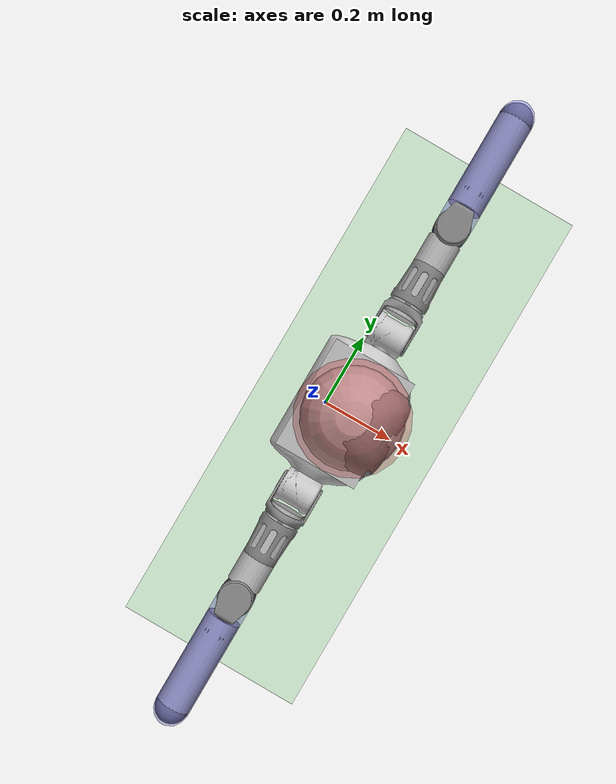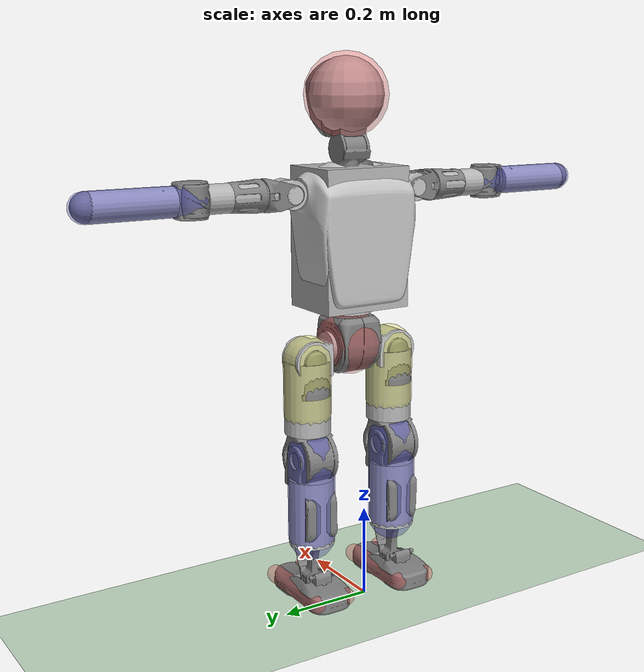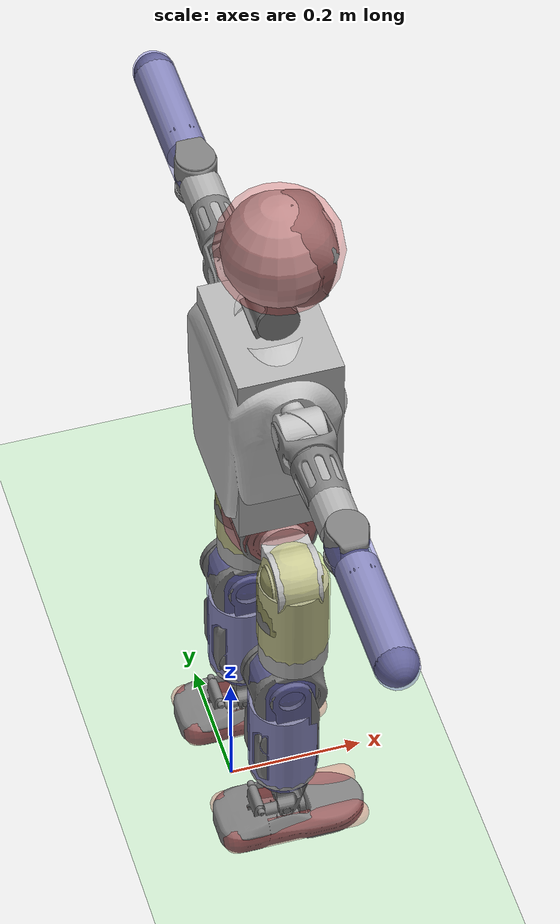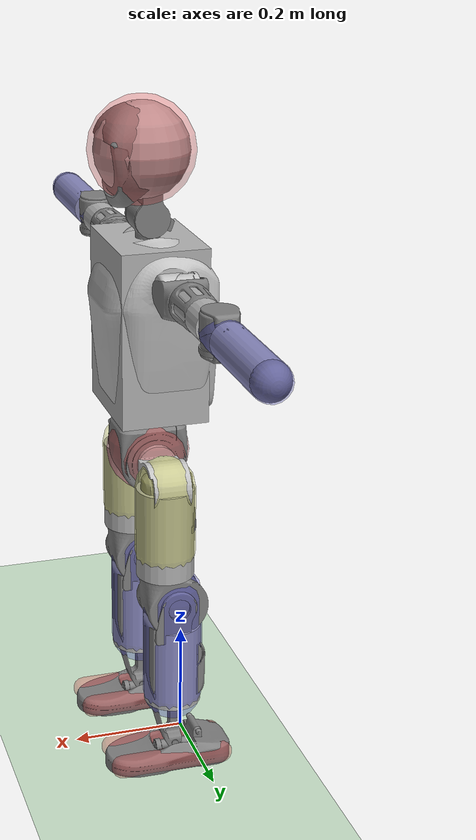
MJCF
<mujoco model="T1">

  <compiler angle="radian" meshdir="assets" autolimits="true"/>

  <option cone="pyramidal" impratio="1" solver="Newton" iterations="2" ls_iterations="4" density="1.2" viscosity="0.00002">
    <flag eulerdamp="disable"/>
  </option>

  <visual>
    <headlight diffuse="0.6 0.6 0.6" ambient="0.3 0.3 0.3" specular="0 0 0"/>
    <rgba haze="0.871 0.616 0.4 0.5"/>
    <global azimuth="-130" elevation="-20"/>
  </visual>

  <asset>
    <material name="light_gray" rgba="0.76 0.76 0.76 1"/>
    <material name="medium_gray" rgba="0.4 0.4 0.4 1"/>
    <texture builtin="gradient" height="100" rgb1="0.9 0.9 0.9" rgb2="0.549 0.251 0.0" type="skybox" width="100"/>
    <texture name="texplane" type="2d" builtin="checker" rgb1="0.5 0.5 0.5" rgb2="0.55 0.55 0.55" width="100" height="100"/>
    <material name="MatPlane" reflectance="0.0" texture="texplane" texrepeat="1 1" texuniform="true"/>

    <mesh file="Trunk.stl"/>
    <mesh file="H1.stl"/>
    <mesh file="H2.stl"/>
    <mesh file="AL1.stl"/>
    <mesh file="AL2.stl"/>
    <mesh file="AL3.stl"/>
    <mesh file="left_hand_link.stl"/>
    <mesh file="AR1.stl"/>
    <mesh file="AR2.stl"/>
    <mesh file="AR3.stl"/>
    <mesh file="right_hand_link.stl"/>
    <mesh file="Waist.stl"/>
    <mesh file="Hip_Pitch_Left.stl"/>
    <mesh file="Hip_Roll_Left.stl"/>
    <mesh file="Hip_Yaw_Left.stl"/>
    <mesh file="Shank_Left.stl"/>
    <mesh file="Ankle_Cross_Left.stl"/>
    <mesh file="left_foot_link.stl"/>
    <mesh file="Hip_Pitch_Right.stl"/>
    <mesh file="Hip_Roll_Right.stl"/>
    <mesh file="Hip_Yaw_Right.stl"/>
    <mesh file="Shank_Right.stl"/>
    <mesh file="Ankle_Cross_Right.stl"/>
    <mesh file="right_foot_link.stl"/>
  </asset>

  <default>
    <default class="mimic">
      <site group="4" type="box" size="0.075 0.05 0.025" rgba="1.0 0.0 0.0 0.5"/>
    </default>
    <default class="t1">
      <site rgba="1 0 0 1" size="0.01" group="5"/>
      <!-- borrowed from https://github.com/BoosterRobotics/booster_gym/blob/687a33d08b08875fe45dc8d91b54db83766df8b9/resources/T1/T1_serial.xml#L6 -->
      <joint limited="true" damping="0.01" frictionloss="0.0" armature="0.01"/>
      <default class="visual">
        <geom type="mesh" contype="0" conaffinity="0" group="0"/>
      </default>
      <default class="collision">
        <geom group="0" rgba="0.7 0.7 0.7 1" contype="0" conaffinity="0"/>

      </default>
    </default>
  </default>

  <worldbody>
    <geom name="floor" friction="1 .1 .1" pos="0 0 0" size="0 0 0.125" type="plane" material="MatPlane" condim="3" conaffinity="1" contype="1" group="2" rgba="0.8 0.9 0.8 1"/>
    <body name="Trunk" pos="0 0 .675" childclass="t1">
      <light name="spotlight" mode="trackcom" pos="0 -2 50" dir="0 0 -1"/>
      <site name="upper_body_mimic" class="mimic" pos="0.075 0.0 0.2"/>
      <freejoint name="root"/>
      <inertial pos="0.0551365 -1.42058e-06 0.105062" quat="0.99996 1.40561e-05 -0.00899532 -1.39249e-05" mass="11.7"
        diaginertia="0.0915404 0.0767787 0.0556055"/>
      <site name="imu"/>
      <geom class="visual" material="light_gray" mesh="Trunk"/>
      <geom class="collision" size="0.075 0.1 0.15" pos="0.06 0 0.12" type="box"/>

      <geom name="torso_col" type="box" pos="0.06 0 0.12" size="0.075 0.1 0.15" rgba="0. 0.9 0.9 0.3" class="collision"/>

      <body name="H1" pos="0.0625 0 0.243">
        <inertial pos="-0.000508 -0.001403 0.057432" quat="0.763881 -0.0132172 0.00173419 0.645219" mass="0.44391"
          diaginertia="0.000241549 0.00022351 0.000149941"/>
        <joint name="AAHead_yaw" axis="0 0 1" range="-1.57 1.57" actuatorfrcrange="-7 7"/>
        <geom class="visual" mesh="H1"/>
        <body name="H2" pos="0 0 0.06185">
          <site name="head_mimic" class="mimic" pos="0.0 0.0 0.11"/>
          <inertial pos="0.007802 0.001262 0.098631" quat="0.988453 0.106172 -0.0745686 -0.0782786" mass="0.631019"
            diaginertia="0.00203553 0.00192467 0.00172381"/>
          <joint name="Head_pitch" axis="0 1 0" range="-0.35 1.22" actuatorfrcrange="-7 7"/>
          <geom class="visual" mesh="H2"/>
          <geom class="collision" size="0.08" pos="0.01 0 0.11"/>

          <geom name="head_col" type="sphere" size="0.09" pos="0.01 0 0.11" rgba="0.9 0.2 0.2 0.3" class="collision"/>
        </body>
      </body>
      <body name="AL1" pos="0.0575 0.1063 0.219" quat="1 0 0.000440565 0">
        <inertial pos="-0.000677 0.044974 0" quat="0.50423 0.495734 -0.50423 0.495734" mass="0.53"
          diaginertia="0.001367 0.00129329 0.000292711"/>
        <joint name="Left_Shoulder_Pitch" axis="0 1 0" range="-3.31 1.22" actuatorfrcrange="-18 18"/>
        <geom class="visual" material="light_gray" mesh="AL1"/>
        <body name="AL2" pos="0 0.047 0">
         <site name="left_shoulder_mimic" class="mimic" pos="0.0 0.0 0.0"/>
          <inertial pos="0.003862 0.037976 0" quat="0.487991 0.511727 -0.487991 0.511727" mass="0.16"
            diaginertia="0.000401 0.00034538 0.00017662"/>
          <joint name="Left_Shoulder_Roll" axis="1 0 0" range="-1.74 1.57" actuatorfrcrange="-18 18"/>
          <geom class="visual" mesh="AL2"/>
          <body name="AL3" pos="0.00025 0.0605 0">
            <inertial pos="0 0.085353 -9.9e-05" quat="0.70641 0.707803 0 0" mass="1.02"
              diaginertia="0.012869 0.012798 0.000620953"/>
            <joint name="Left_Elbow_Pitch" axis="0 1 0" range="-2.27 2.27" actuatorfrcrange="-18 18"/>
            <geom class="visual" mesh="AL3"/>
            <geom class="collision" size="0.03 0.075" pos="0 0.05 0" quat="0.707105 0.707108 0 0" type="cylinder"/>
            <body name="left_hand_link" pos="0 0.1471 0">
              <site name="left_elbow_mimic" class="mimic" pos="0.0 0.0 0.0"/>
              <site name="left_hand_mimic" class="mimic" pos="0.0 0.2 0.0"/>
              <inertial pos="-0.000108 0.109573 0.000591" quat="0.707866 0.706347 -5.22939e-05 -0.000214913"
                mass="0.327214" diaginertia="0.008159 0.00813104 0.000214962"/>
              <joint name="Left_Elbow_Yaw" axis="0 0 1" range="-2.44 0" actuatorfrcrange="-18 18"/>
              <geom class="visual" mesh="left_hand_link"/>
              <geom class="collision" size="0.03 0.0875" pos="0 0.13 0" quat="0.707105 0.707108 0 0" type="cylinder"/>
              <geom name="left_forearm_col" type="capsule" size="0.031" pos="0 0 0" fromto="0 0.22 0 0 -0.002 0" rgba="0.2 0.2 0.9 0.3" class="collision"/>
            </body>
          </body>
        </body>
      </body>
      <body name="AR1" pos="0.0575 -0.1063 0.219" quat="1 0 0.000440565 0">
        <inertial pos="-0.000677 -0.044974 0" quat="0.50423 0.495734 -0.50423 0.495734" mass="0.53"
          diaginertia="0.001367 0.00129329 0.000292711"/>
        <joint name="Right_Shoulder_Pitch" axis="0 1 0" range="-3.31 1.22" actuatorfrcrange="-18 18"/>
        <geom class="visual" material="light_gray" mesh="AR1"/>
        <body name="AR2" pos="0 -0.047 0">
          <site name="right_shoulder_mimic" class="mimic" pos="0.0 0.0 0.0"/>
          <inertial pos="0.003862 -0.037976 0" quat="0.511727 0.487991 -0.511727 0.487991" mass="0.16"
            diaginertia="0.000401 0.00034538 0.00017662"/>
          <joint name="Right_Shoulder_Roll" axis="1 0 0" range="-1.57 1.74" actuatorfrcrange="-18 18"/>
          <geom class="visual" mesh="AR2"/>
          <body name="AR3" pos="0.00025 -0.0605 0">
            <inertial pos="0 -0.085353 -9.9e-05" quat="0.707803 0.70641 0 0" mass="1.02"
              diaginertia="0.012869 0.012798 0.000620953"/>
            <joint name="Right_Elbow_Pitch" axis="0 1 0" range="-2.27 2.27" actuatorfrcrange="-18 18"/>
            <geom class="visual" mesh="AR3"/>
            <geom class="collision" size="0.03 0.075" pos="0 -0.05 0" quat="0.707105 0.707108 0 0" type="cylinder"/>
            <body name="right_hand_link" pos="0 -0.1471 0">
              <site name="right_elbow_mimic" class="mimic" pos="0.0 0.0 0.0"/>
              <site name="right_hand_mimic" class="mimic" pos="0.0 -0.2 0.0"/>
              <inertial pos="-0.000108 -0.109573 0.000591" quat="0.706347 0.707866 0.000214913 5.22939e-05"
                mass="0.327214" diaginertia="0.008159 0.00813104 0.000214962"/>
              <joint name="Right_Elbow_Yaw" axis="0 0 1" range="0 2.44" actuatorfrcrange="-18 18"/>
              <geom class="visual" mesh="right_hand_link"/>
              <geom class="collision" size="0.03 0.0875" pos="0 -0.13 0" quat="0.707105 0.707108 0 0" type="cylinder"/>
              <geom name="right_forearm_col" type="capsule" size="0.031" pos="0 0 0" fromto="0 -0.22 0 0 0.002 0" rgba="0.2 0.2 0.9 0.3" class="collision"/>
            </body>
          </body>
        </body>
      </body>
      <body name="Waist" pos="0.0625 0 -0.1155">
        <site name="pelvis_mimic" class="mimic"/>
        <inertial pos="0.002284 3e-06 0.007301" quat="0.983649 0.000360386 -0.180076 0.00269791" mass="2.581"
          diaginertia="0.00536742 0.005299 0.00474258"/>
        <joint name="Waist" axis="0 0 1" range="-1.57 1.57" actuatorfrcrange="-30 30"/>
        <geom class="visual" mesh="Waist"/>
        <geom name="waist_col" type="sphere" size="0.072" pos="0 0 0.008" rgba="0.9 0.2 0.2 0.3" class="collision"/>

        <body name="Hip_Pitch_Left" pos="0 0.106 0">
          <inertial pos="0.000534 -0.007296 -0.018083" quat="0.975141 0.2211 0.0145808 0.0017406" mass="1.021"
            diaginertia="0.00180547 0.00145926 0.00125327"/>
          <joint name="Left_Hip_Pitch" axis="0 1 0" range="-1.8 1.57" actuatorfrcrange="-45 45"/>
          <geom class="visual" material="light_gray" mesh="Hip_Pitch_Left"/>
          <body name="Hip_Roll_Left" pos="0 0 -0.02">
            <site name="left_hip_mimic" class="mimic" pos="0.0 0.0 0.0"/>
            <inertial pos="0.001101 2.4e-05 -0.05375" quat="0.707081 -0.00599604 -0.00599604 0.707081" mass="0.385"
              diaginertia="0.001743 0.00151729 0.000514712"/>
            <joint name="Left_Hip_Roll" axis="1 0 0" range="-0.2 1.57" actuatorfrcrange="-30 30"/>
            <geom class="visual" mesh="Hip_Roll_Left"/>

            <geom name="left_hip_col" type="capsule" size="0.052" pos="0 0 0" fromto="0.0 0 -0.12 0.0 0 0." rgba="0.9 0.9 0.2 0.3" class="collision"/>

            <body name="Hip_Yaw_Left" pos="0 0 -0.081854">
              <inertial pos="-0.007233 0.000206 -0.089184" quat="0.696808 -0.033953 -0.0315708 0.715758" mass="2.166"
                diaginertia="0.0257334 0.0253024 0.00259215"/>
              <joint name="Left_Hip_Yaw" axis="0 0 1" range="-1 1" actuatorfrcrange="-30 30"/>
              <geom class="visual" mesh="Hip_Yaw_Left"/>
              <geom class="collision" size="0.05 0.08" type="cylinder"/>
              <body name="Shank_Left" pos="-0.014 0 -0.134">
                <site name="left_knee_mimic" class="mimic" pos="0.0 0.0 0.0"/>
                <inertial pos="-0.006012 0.000259 -0.124318" quat="0.997573 0.00144024 -0.023949 0.0653706" mass="1.73"
                  diaginertia="0.0346951 0.0345375 0.00185844"/>
                <joint name="Left_Knee_Pitch" axis="0 1 0" range="0 2.34" actuatorfrcrange="-60 60"/>
                <geom class="visual" mesh="Shank_Left"/>
                <geom class="collision" size="0.05 0.075" pos="0 0 -0.12" type="cylinder"/>

                <geom name="left_knee_col" type="capsule" size="0.052" pos="0 0 0" fromto="0.0 0 -0.18 0.0 0 0.01" rgba="0.2 0.2 0.9 0.3" class="collision"/>

                <body name="Ankle_Cross_Left" pos="0 0 -0.28">
                  <inertial pos="-0.003722 0 -0.007981" quat="0.443136 0.551027 0.551027 0.443136" mass="0.073"
                    diaginertia="2.9e-05 2.56589e-05 1.13411e-05"/>
                  <joint name="Left_Ankle_Pitch" axis="0 1 0" range="-0.87 0.35" actuatorfrcrange="-20 20"/>
                  <geom class="visual" mesh="Ankle_Cross_Left"/>
                  <body name="left_foot_link" pos="0 0.00025 -0.012">
                    <site name="left_foot_mimic" class="mimic" pos="0.0 0.0 0.0"/>
                    <inertial pos="-0.000249 0 -0.00914" quat="0 0.679927 0 0.733279" mass="0.685" diaginertia="0.00268212 0.002385 0.000726885"/>
                    <joint name="Left_Ankle_Roll" axis="1 0 0" range="-0.44 0.44" actuatorfrcrange="-15 15"/>
                    <geom class="visual" mesh="left_foot_link"/>
                    <geom name="left_foot_1_col" class="collision" size="0.02 0.0915" pos="0.01 0.035 -0.01"  quat="0.707105 0 0.707108 0" rgba="0.9 0.2 0.2 0.3" type="capsule"/>
                    <geom name="left_foot_2_col" class="collision" size="0.02 0.0915" pos="0.01 -0.035 -0.01"  quat="0.707105 0 0.707108 0" rgba="0.9 0.2 0.2 0.3" type="capsule"/>
                    <site name="left_foot" size="0.015" pos="0.0 0 -0.025"/>
                  </body>
                </body>
              </body>
            </body>
          </body>
        </body>
        <body name="Hip_Pitch_Right" pos="0 -0.106 0">
          <inertial pos="0.000534 0.007514 -0.018082" quat="0.973446 -0.228403 0.0147148 -0.00419349" mass="1.021"
            diaginertia="0.00180552 0.0014632 0.00124928"/>
          <joint name="Right_Hip_Pitch" axis="0 1 0" range="-1.8 1.57" actuatorfrcrange="-45 45"/>
          <geom class="visual" material="light_gray" mesh="Hip_Pitch_Right"/>
          <body name="Hip_Roll_Right" pos="0 0 -0.02">
            <site name="right_hip_mimic" class="mimic" pos="0.0 0.0 0.0"/>
            <inertial pos="0.001099 2.4e-05 -0.053748" quat="0.707081 -0.00599604 -0.00599604 0.707081" mass="0.385"
              diaginertia="0.001743 0.00151729 0.000514712"/>
            <joint name="Right_Hip_Roll" axis="1 0 0" range="-1.57 0.2" actuatorfrcrange="-30 30"/>
            <geom class="visual" mesh="Hip_Roll_Right"/>

            <geom name="right_hip_col" type="capsule" size="0.052" pos="0 0 0" fromto="0.0 0 -0.12 0.0 0 0." rgba="0.9 0.9 0.2 0.3" class="collision"/>

            <body name="Hip_Yaw_Right" pos="0 0 -0.081854">
              <inertial pos="-0.007191 -0.000149 -0.08922" quat="0.714468 -0.0315638 -0.0336391 0.698146" mass="2.17"
                diaginertia="0.0257623 0.0253298 0.00259389"/>
              <joint name="Right_Hip_Yaw" axis="0 0 1" range="-1 1" actuatorfrcrange="-30 30"/>
              <geom class="visual" mesh="Hip_Yaw_Right"/>
              <geom class="collision" size="0.05 0.08" type="cylinder"/>
              <body name="Shank_Right" pos="-0.014 0 -0.134">
                <site name="right_knee_mimic" class="mimic" pos="0.0 0.0 0.0"/>
                <inertial pos="-0.005741 -0.000541 -0.122602" quat="0.99926 -0.000580963 -0.023461 -0.0304754"
                  mass="1.79" diaginertia="0.0351717 0.0349574 0.00196589"/>
                <joint name="Right_Knee_Pitch" axis="0 1 0" range="0 2.34" actuatorfrcrange="-60 60"/>
                <geom class="visual" mesh="Shank_Right"/>
                <geom class="collision" size="0.05 0.075" pos="0 0 -0.12" type="cylinder"/>

                <geom name="right_knee_col" type="capsule" size="0.052" pos="0 0 0" fromto="0.0 0 -0.18 0.0 0 0.01" rgba="0.2 0.2 0.9 0.3" class="collision"/>

                <body name="Ankle_Cross_Right" pos="0 0 -0.28">
                  <inertial pos="-0.003722 0 -0.007981" quat="0.443136 0.551027 0.551027 0.443136" mass="0.073"
                    diaginertia="2.9e-05 2.56589e-05 1.13411e-05"/>
                  <joint name="Right_Ankle_Pitch" axis="0 1 0" range="-0.87 0.35" actuatorfrcrange="-20 20"/>
                  <geom class="visual" mesh="Ankle_Cross_Right"/>
                  <body name="right_foot_link" pos="0 -0.00025 -0.012">
                    <site name="right_foot_mimic" class="mimic" pos="0.0 0.0 0.0"/>
                    <inertial pos="-0.000248 0 -0.00914" quat="0 0.679927 0 0.733279" mass="0.685" diaginertia="0.00268212 0.002385 0.000726885"/>
                    <joint name="Right_Ankle_Roll" axis="1 0 0" range="-0.44 0.44" actuatorfrcrange="-15 15"/>
                    <geom class="visual" mesh="right_foot_link"/>
                    <geom name="right_foot_1_col" class="collision" size="0.02 0.0915" pos="0.01 0.035 -0.01" rgba="0.9 0.2 0.2 0.3" quat="0.707105 0 0.707108 0" type="capsule" />
                    <geom name="right_foot_2_col" class="collision" size="0.02 0.0915" pos="0.01 -0.035 -0.01" rgba="0.9 0.2 0.2 0.3" quat="0.707105 0 0.707108 0" type="capsule" />
                    <site name="right_foot" size="0.015" pos="0.0 0 -0.025"/>
                  </body>
                </body>
              </body>
            </body>
          </body>
        </body>
      </body>
    </body>
  </worldbody>

  <sensor>
    <gyro name="angular-velocity" site="imu"/>
    <accelerometer name="linear-acceleration" site="imu"/>
    <framequat name="orientation" objtype="site" objname="imu"/>
    <gyro name="imu_angular_velocity" site="imu"/>
    <velocimeter name="imu_linear_velocity" site="imu"/>

    <framelinvel objtype="site" objname="right_foot" name="right_foot_global_linvel"/>
    <framelinvel objtype="site" objname="left_foot" name="left_foot_global_linvel"/>
    <framelinvel objtype="geom" objname="left_foot_1_col" name="left_foot_1_col_global_linear_velocity"/>
    <framelinvel objtype="geom" objname="left_foot_2_col" name="left_foot_2_col_global_linear_velocity"/>
    <framelinvel objtype="geom" objname="right_foot_1_col" name="right_foot_1_col_global_linear_velocity"/>
    <framelinvel objtype="geom" objname="right_foot_2_col" name="right_foot_2_col_global_linear_velocity"/>
  </sensor>

  <contact>
    <pair geom1="floor" geom2="left_foot_1_col"/>
    <pair geom1="floor" geom2="left_foot_2_col"/>
    <pair geom1="floor" geom2="right_foot_1_col"/>
    <pair geom1="floor" geom2="right_foot_2_col"/>
  </contact>

  <actuator>

    <position name="AAHead_yaw" joint="AAHead_yaw" forcelimited="true" forcerange="-7 7" kp="40" kv="2"/>
    <position name="Head_pitch" joint="Head_pitch" forcelimited="true" forcerange="-7 7" kp="40" kv="2"/>
    <position name="Left_Shoulder_Pitch" joint="Left_Shoulder_Pitch" forcelimited="true" forcerange="-18 18" kp="40" kv="2"/>
    <position name="Left_Shoulder_Roll" joint="Left_Shoulder_Roll" forcelimited="true" forcerange="-18 18" kp="40" kv="2"/>
    <position name="Left_Elbow_Pitch" joint="Left_Elbow_Pitch" forcelimited="true" forcerange="-18 18" kp="40" kv="2"/>
    <position name="Left_Elbow_Yaw" joint="Left_Elbow_Yaw" forcelimited="true" forcerange="-18 18" kp="40" kv="2"/>
    <position name="Right_Shoulder_Pitch" joint="Right_Shoulder_Pitch" forcelimited="true" forcerange="-18 18" kp="40" kv="2"/>
    <position name="Right_Shoulder_Roll" joint="Right_Shoulder_Roll" forcelimited="true" forcerange="-18 18" kp="40" kv="2"/>
    <position name="Right_Elbow_Pitch" joint="Right_Elbow_Pitch" forcelimited="true" forcerange="-18 18" kp="40" kv="2"/>
    <position name="Right_Elbow_Yaw" joint="Right_Elbow_Yaw" forcelimited="true" forcerange="-18 18" kp="40" kv="2"/>
    <position name="Waist" joint="Waist" forcelimited="true" forcerange="-30 30" kp="200" kv="5"/>
    <position name="Left_Hip_Pitch" joint="Left_Hip_Pitch" forcelimited="true" forcerange="-45 45" kp="200" kv="5"/>
    <position name="Left_Hip_Roll" joint="Left_Hip_Roll" forcelimited="true" forcerange="-30 30" kp="200" kv="5"/>
    <position name="Left_Hip_Yaw" joint="Left_Hip_Yaw" forcelimited="true" forcerange="-30 30" kp="200" kv="5"/>
    <position name="Left_Knee_Pitch" joint="Left_Knee_Pitch" forcelimited="true" forcerange="-60 60" kp="200" kv="5"/>
    <position name="Left_Ankle_Pitch" joint="Left_Ankle_Pitch" forcelimited="true" forcerange="-20 20" kp="50" kv="1"/>
    <position name="Left_Ankle_Roll" joint="Left_Ankle_Roll" forcelimited="true" forcerange="-15 15" kp="50" kv="1"/>
    <position name="Right_Hip_Pitch" joint="Right_Hip_Pitch" forcelimited="true" forcerange="-45 45" kp="200" kv="5"/>
    <position name="Right_Hip_Roll" joint="Right_Hip_Roll" forcelimited="true" forcerange="-30 30" kp="200" kv="5"/>
    <position name="Right_Hip_Yaw" joint="Right_Hip_Yaw" forcelimited="true" forcerange="-30 30" kp="200" kv="5"/>
    <position name="Right_Knee_Pitch" joint="Right_Knee_Pitch" forcelimited="true" forcerange="-60 60" kp="200" kv="5"/>
    <position name="Right_Ankle_Pitch" joint="Right_Ankle_Pitch" forcelimited="true" forcerange="-20 20" kp="30" kv="1"/>
    <position name="Right_Ankle_Roll" joint="Right_Ankle_Roll" forcelimited="true" forcerange="-15 15" kp="30" kv="1"/>

  </actuator>

  <keyframe>
    <key name="home" qpos="0 0 0.72 1 0 0 0 0 0 0.2 -1.35 0 -0.5 0.2 1.35 0 0.5 0 -0.2 0 0 0.4 -0.25 0 -0.2 0 0 0.4 -0.25 0" qvel="0 0 0 0 0 0 0 0 0 0 0 0 0 0 0 0 0 0 0 0 0 0 0 0 0 0 0 0 0"/>
  </keyframe>

</mujoco>
